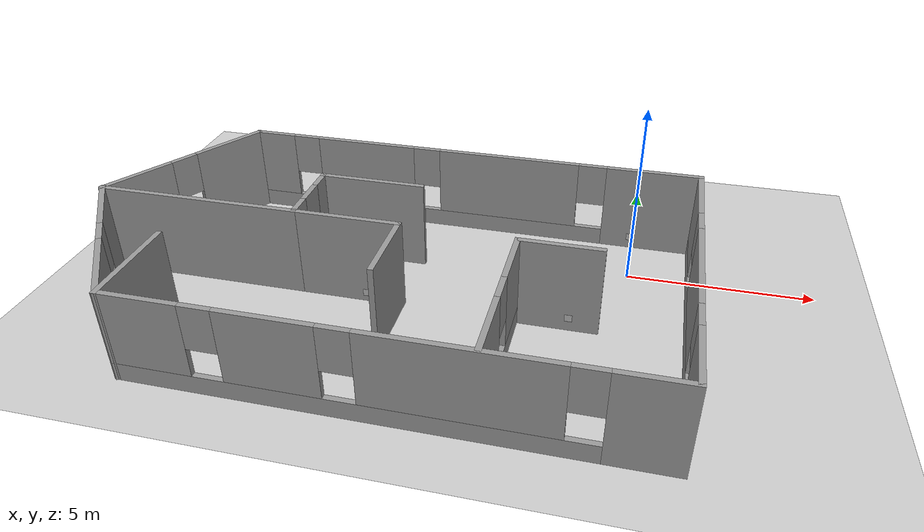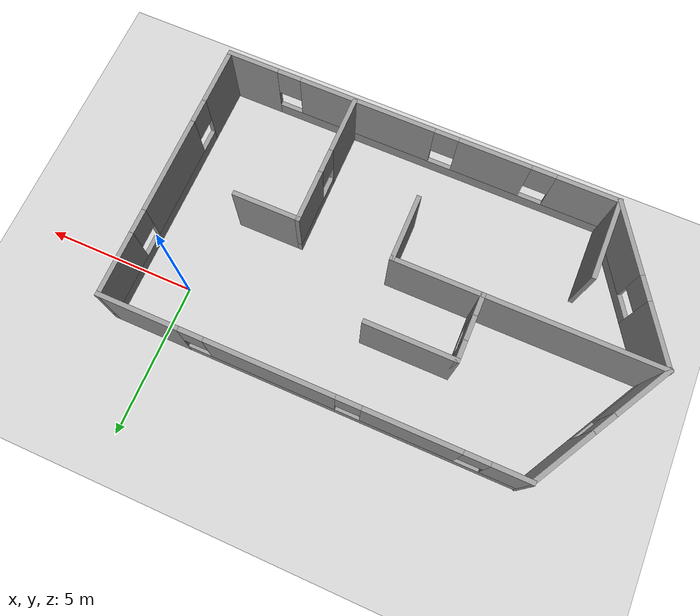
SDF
<sdf version="1.7">
 <world name="default">
  <light name="sun" type="directional">
   <pose>0 0 10 0 -0 0</pose>
   <diffuse>0.8 0.8 0.8 1</diffuse>
   <specular>0.2 0.2 0.2 1</specular>
   <attenuation>
    <range>1000</range>
    <constant>0.9</constant>
    <linear>0.01</linear>
    <quadratic>0.001</quadratic>
   </attenuation>
   <direction>-0.5 0.1 -0.9</direction>
   <spot><inner_angle>0</inner_angle><outer_angle>0</outer_angle><falloff>0</falloff></spot>
  </light>
  <model name="ground_plane">
   <static>1</static>
   <link name="link">
    <collision name="collision">
     <geometry><plane><normal>0 0 1</normal><size>100 100</size></plane></geometry>
     <surface>
      <contact><collide_bitmask>65535</collide_bitmask></contact>
      <friction><ode><mu>100</mu><mu2>50</mu2></ode></friction>
     </surface>
    </collision>
    <visual name="visual">
     <cast_shadows>0</cast_shadows>
     <geometry><plane><normal>0 0 1</normal><size>100 100</size></plane></geometry>
     <material>
      <script><uri>file://media/materials/scripts/gazebo.material</uri><name>Gazebo/Grey</name></script>
     </material>
    </visual>
   </link>
  </model>
  <gravity>0 0 -9.8</gravity>
  <magnetic_field>6e-06 2.3e-05 -4.2e-05</magnetic_field>
  <atmosphere type="adiabatic"/>
  <physics type="ode">
   <max_step_size>0.001</max_step_size>
   <real_time_factor>1</real_time_factor>
   <real_time_update_rate>1000</real_time_update_rate>
  </physics>
  <scene><ambient>0.4 0.4 0.4 1</ambient><background>0.7 0.7 0.7 1</background><shadows>1</shadows></scene>
  <spherical_coordinates>
   <surface_model>EARTH_WGS84</surface_model>
   <latitude_deg>0</latitude_deg>
   <longitude_deg>0</longitude_deg>
   <elevation>0</elevation>
   <heading_deg>0</heading_deg>
  </spherical_coordinates>
  <model name="casa1">
   <pose>-6.29806 -2.75628 0 0 -0 0</pose>
   <link name="Wall_0">
    <pose>1.41423 -4.4245 0 0 -0 3.14159</pose>
    <visual name="Wall_0_Visual_0">
     <pose>-5.73532 0 1.25 0 -0 0</pose>
     <geometry><box><size>1.77935 0.15 2.5</size></box></geometry>
     <material>
      <script><uri>file://media/materials/scripts/gazebo.material</uri><name>Gazebo/Grey</name></script>
      <ambient>1 1 1 1</ambient>
     </material>
     <meta><layer>0</layer></meta>
    </visual>
    <collision name="Wall_0_Collision_0">
     <geometry><box><size>1.77935 0.15 2.5</size></box></geometry>
     <pose>-5.73532 0 1.25 0 -0 0</pose>
    </collision>
    <visual name="Wall_0_Visual_1">
     <pose>0.889677 0 0.25 0 -0 0</pose>
     <geometry><box><size>11.4706 0.15 0.5</size></box></geometry>
     <material>
      <script><uri>file://media/materials/scripts/gazebo.material</uri><name>Gazebo/Grey</name></script>
      <ambient>1 1 1 1</ambient>
     </material>
     <meta><layer>0</layer></meta>
    </visual>
    <collision name="Wall_0_Collision_1">
     <geometry><box><size>11.4706 0.15 0.5</size></box></geometry>
     <pose>0.889677 0 0.25 0 -0 0</pose>
    </collision>
    <visual name="Wall_0_Visual_2">
     <pose>-1.75218 0 1.5 0 -0 0</pose>
     <geometry><box><size>4.58694 0.15 2</size></box></geometry>
     <material>
      <script><uri>file://media/materials/scripts/gazebo.material</uri><name>Gazebo/Grey</name></script>
      <ambient>1 1 1 1</ambient>
     </material>
     <meta><layer>0</layer></meta>
    </visual>
    <collision name="Wall_0_Collision_2">
     <geometry><box><size>4.58694 0.15 2</size></box></geometry>
     <pose>-1.75218 0 1.5 0 -0 0</pose>
    </collision>
    <visual name="Wall_0_Visual_3">
     <pose>2.53289 0 1.5 0 -0 0</pose>
     <geometry><box><size>2.38319 0.15 2</size></box></geometry>
     <material>
      <script><uri>file://media/materials/scripts/gazebo.material</uri><name>Gazebo/Grey</name></script>
      <ambient>1 1 1 1</ambient>
     </material>
     <meta><layer>0</layer></meta>
    </visual>
    <collision name="Wall_0_Collision_3">
     <geometry><box><size>2.38319 0.15 2</size></box></geometry>
     <pose>2.53289 0 1.5 0 -0 0</pose>
    </collision>
    <visual name="Wall_0_Visual_4">
     <pose>5.57474 0 1.5 0 -0 0</pose>
     <geometry><box><size>2.10052 0.15 2</size></box></geometry>
     <material>
      <script><uri>file://media/materials/scripts/gazebo.material</uri><name>Gazebo/Grey</name></script>
      <ambient>1 1 1 1</ambient>
     </material>
     <meta><layer>0</layer></meta>
    </visual>
    <collision name="Wall_0_Collision_4">
     <geometry><box><size>2.10052 0.15 2</size></box></geometry>
     <pose>5.57474 0 1.5 0 -0 0</pose>
    </collision>
    <visual name="Wall_0_Visual_5">
     <pose>-4.44565 0 1.9 0 -0 0</pose>
     <geometry><box><size>0.8 0.15 1.2</size></box></geometry>
     <material>
      <script><uri>file://media/materials/scripts/gazebo.material</uri><name>Gazebo/Grey</name></script>
      <ambient>1 1 1 1</ambient>
     </material>
     <meta><layer>0</layer></meta>
    </visual>
    <collision name="Wall_0_Collision_5">
     <geometry><box><size>0.8 0.15 1.2</size></box></geometry>
     <pose>-4.44565 0 1.9 0 -0 0</pose>
    </collision>
    <visual name="Wall_0_Visual_6">
     <pose>0.941293 0 1.9 0 -0 0</pose>
     <geometry><box><size>0.8 0.15 1.2</size></box></geometry>
     <material>
      <script><uri>file://media/materials/scripts/gazebo.material</uri><name>Gazebo/Grey</name></script>
      <ambient>1 1 1 1</ambient>
     </material>
     <meta><layer>0</layer></meta>
    </visual>
    <collision name="Wall_0_Collision_6">
     <geometry><box><size>0.8 0.15 1.2</size></box></geometry>
     <pose>0.941293 0 1.9 0 -0 0</pose>
    </collision>
    <visual name="Wall_0_Visual_7">
     <pose>4.12448 0 1.9 0 -0 0</pose>
     <geometry><box><size>0.8 0.15 1.2</size></box></geometry>
     <material>
      <script><uri>file://media/materials/scripts/gazebo.material</uri><name>Gazebo/Grey</name></script>
      <ambient>1 1 1 1</ambient>
     </material>
     <meta><layer>0</layer></meta>
    </visual>
    <collision name="Wall_0_Collision_7">
     <geometry><box><size>0.8 0.15 1.2</size></box></geometry>
     <pose>4.12448 0 1.9 0 -0 0</pose>
    </collision>
   </link>
   <link name="Wall_10">
    <collision name="Wall_10_Collision">
     <geometry><box><size>3 0.15 2.5</size></box></geometry>
     <pose>0 0 1.25 0 -0 0</pose>
    </collision>
    <visual name="Wall_10_Visual">
     <pose>0 0 1.25 0 -0 0</pose>
     <geometry><box><size>3 0.15 2.5</size></box></geometry>
     <material>
      <script><uri>file://media/materials/scripts/gazebo.material</uri><name>Gazebo/Grey</name></script>
      <ambient>1 1 1 1</ambient>
     </material>
     <meta><layer>0</layer></meta>
    </visual>
    <pose>-0.91077 0.008775 0 0 -0 0</pose>
   </link>
   <link name="Wall_11">
    <collision name="Wall_11_Collision">
     <geometry><box><size>2.25 0.15 2.5</size></box></geometry>
     <pose>0 0 1.25 0 -0 0</pose>
    </collision>
    <visual name="Wall_11_Visual">
     <pose>0 0 1.25 0 -0 0</pose>
     <geometry><box><size>2.25 0.15 2.5</size></box></geometry>
     <material>
      <script><uri>file://media/materials/scripts/gazebo.material</uri><name>Gazebo/Grey</name></script>
      <ambient>1 1 1 1</ambient>
     </material>
     <meta><layer>0</layer></meta>
    </visual>
    <pose>0.51423 -1.04123 0 0 -0 -1.5708</pose>
   </link>
   <link name="Wall_13">
    <pose>3.5866 -2.20323 0 0 -0 1.5708</pose>
    <visual name="Wall_13_Visual_0">
     <pose>-1.28197 0 1.25 0 -0 0</pose>
     <geometry><box><size>1.93606 0.15 2.5</size></box></geometry>
     <material>
      <script><uri>file://media/materials/scripts/gazebo.material</uri><name>Gazebo/Grey</name></script>
      <ambient>1 1 1 1</ambient>
     </material>
     <meta><layer>0</layer></meta>
    </visual>
    <collision name="Wall_13_Collision_0">
     <geometry><box><size>1.93606 0.15 2.5</size></box></geometry>
     <pose>-1.28197 0 1.25 0 -0 0</pose>
    </collision>
    <visual name="Wall_13_Visual_1">
     <pose>0.968033 0 0.25 0 -0 0</pose>
     <geometry><box><size>2.56393 0.15 0.5</size></box></geometry>
     <material>
      <script><uri>file://media/materials/scripts/gazebo.material</uri><name>Gazebo/Grey</name></script>
      <ambient>1 1 1 1</ambient>
     </material>
     <meta><layer>0</layer></meta>
    </visual>
    <collision name="Wall_13_Collision_1">
     <geometry><box><size>2.56393 0.15 0.5</size></box></geometry>
     <pose>0.968033 0 0.25 0 -0 0</pose>
    </collision>
    <visual name="Wall_13_Visual_2">
     <pose>1.36803 0 1.5 0 -0 0</pose>
     <geometry><box><size>1.76394 0.15 2</size></box></geometry>
     <material>
      <script><uri>file://media/materials/scripts/gazebo.material</uri><name>Gazebo/Grey</name></script>
      <ambient>1 1 1 1</ambient>
     </material>
     <meta><layer>0</layer></meta>
    </visual>
    <collision name="Wall_13_Collision_2">
     <geometry><box><size>1.76394 0.15 2</size></box></geometry>
     <pose>1.36803 0 1.5 0 -0 0</pose>
    </collision>
    <visual name="Wall_13_Visual_3">
     <pose>0.086065 0 1.9 0 -0 0</pose>
     <geometry><box><size>0.8 0.15 1.2</size></box></geometry>
     <material>
      <script><uri>file://media/materials/scripts/gazebo.material</uri><name>Gazebo/Grey</name></script>
      <ambient>1 1 1 1</ambient>
     </material>
     <meta><layer>0</layer></meta>
    </visual>
    <collision name="Wall_13_Collision_3">
     <geometry><box><size>0.8 0.15 1.2</size></box></geometry>
     <pose>0.086065 0 1.9 0 -0 0</pose>
    </collision>
   </link>
   <link name="Wall_14">
    <collision name="Wall_14_Collision">
     <geometry><box><size>2.25 0.15 2.5</size></box></geometry>
     <pose>0 0 1.25 0 -0 0</pose>
    </collision>
    <visual name="Wall_14_Visual">
     <pose>0 0 1.25 0 -0 0</pose>
     <geometry><box><size>2.25 0.15 2.5</size></box></geometry>
     <material>
      <script><uri>file://media/materials/scripts/gazebo.material</uri><name>Gazebo/Grey</name></script>
      <ambient>1 1 1 1</ambient>
     </material>
     <meta><layer>0</layer></meta>
    </visual>
    <pose>4.6366 -0.028234 0 0 -0 0</pose>
   </link>
   <link name="Wall_2">
    <pose>7.96423 0.000505 0 0 -0 1.5708</pose>
    <visual name="Wall_2_Visual_0">
     <pose>-3.50884 0 1.25 0 -0 0</pose>
     <geometry><box><size>1.98233 0.15 2.5</size></box></geometry>
     <material>
      <script><uri>file://media/materials/scripts/gazebo.material</uri><name>Gazebo/Grey</name></script>
      <ambient>1 1 1 1</ambient>
     </material>
     <meta><layer>0</layer></meta>
    </visual>
    <collision name="Wall_2_Collision_0">
     <geometry><box><size>1.98233 0.15 2.5</size></box></geometry>
     <pose>-3.50884 0 1.25 0 -0 0</pose>
    </collision>
    <visual name="Wall_2_Visual_1">
     <pose>0.991163 0 0.25 0 -0 0</pose>
     <geometry><box><size>7.01767 0.15 0.5</size></box></geometry>
     <material>
      <script><uri>file://media/materials/scripts/gazebo.material</uri><name>Gazebo/Grey</name></script>
      <ambient>1 1 1 1</ambient>
     </material>
     <meta><layer>0</layer></meta>
    </visual>
    <collision name="Wall_2_Collision_1">
     <geometry><box><size>7.01767 0.15 0.5</size></box></geometry>
     <pose>0.991163 0 0.25 0 -0 0</pose>
    </collision>
    <visual name="Wall_2_Visual_2">
     <pose>-0.08218 0 1.5 0 -0 0</pose>
     <geometry><box><size>3.27099 0.15 2</size></box></geometry>
     <material>
      <script><uri>file://media/materials/scripts/gazebo.material</uri><name>Gazebo/Grey</name></script>
      <ambient>1 1 1 1</ambient>
     </material>
     <meta><layer>0</layer></meta>
    </visual>
    <collision name="Wall_2_Collision_2">
     <geometry><box><size>3.27099 0.15 2</size></box></geometry>
     <pose>-0.08218 0 1.5 0 -0 0</pose>
    </collision>
    <visual name="Wall_2_Visual_3">
     <pose>3.42666 0 1.5 0 -0 0</pose>
     <geometry><box><size>2.14669 0.15 2</size></box></geometry>
     <material>
      <script><uri>file://media/materials/scripts/gazebo.material</uri><name>Gazebo/Grey</name></script>
      <ambient>1 1 1 1</ambient>
     </material>
     <meta><layer>0</layer></meta>
    </visual>
    <collision name="Wall_2_Collision_3">
     <geometry><box><size>2.14669 0.15 2</size></box></geometry>
     <pose>3.42666 0 1.5 0 -0 0</pose>
    </collision>
    <visual name="Wall_2_Visual_4">
     <pose>-2.11767 0 1.9 0 -0 0</pose>
     <geometry><box><size>0.8 0.15 1.2</size></box></geometry>
     <material>
      <script><uri>file://media/materials/scripts/gazebo.material</uri><name>Gazebo/Grey</name></script>
      <ambient>1 1 1 1</ambient>
     </material>
     <meta><layer>0</layer></meta>
    </visual>
    <collision name="Wall_2_Collision_4">
     <geometry><box><size>0.8 0.15 1.2</size></box></geometry>
     <pose>-2.11767 0 1.9 0 -0 0</pose>
    </collision>
    <visual name="Wall_2_Visual_5">
     <pose>1.95331 0 1.9 0 -0 0</pose>
     <geometry><box><size>0.8 0.15 1.2</size></box></geometry>
     <material>
      <script><uri>file://media/materials/scripts/gazebo.material</uri><name>Gazebo/Grey</name></script>
      <ambient>1 1 1 1</ambient>
     </material>
     <meta><layer>0</layer></meta>
    </visual>
    <collision name="Wall_2_Collision_5">
     <geometry><box><size>0.8 0.15 1.2</size></box></geometry>
     <pose>1.95331 0 1.9 0 -0 0</pose>
    </collision>
   </link>
   <link name="Wall_20">
    <collision name="Wall_20_Collision">
     <geometry><box><size>3 0.15 2.5</size></box></geometry>
     <pose>0 0 1.25 0 -0 0</pose>
    </collision>
    <visual name="Wall_20_Visual">
     <pose>0 0 1.25 0 -0 0</pose>
     <geometry><box><size>3 0.15 2.5</size></box></geometry>
     <material>
      <script><uri>file://media/materials/scripts/gazebo.material</uri><name>Gazebo/Grey</name></script>
      <ambient>1 1 1 1</ambient>
     </material>
     <meta><layer>0</layer></meta>
    </visual>
    <pose>-0.91077 2.10878 0 0 -0 0</pose>
   </link>
   <link name="Wall_22">
    <collision name="Wall_22_Collision">
     <geometry><box><size>2.75 0.15 2.5</size></box></geometry>
     <pose>0 0 1.25 0 -0 0</pose>
    </collision>
    <visual name="Wall_22_Visual">
     <pose>0 0 1.25 0 -0 0</pose>
     <geometry><box><size>2.75 0.15 2.5</size></box></geometry>
     <material>
      <script><uri>file://media/materials/scripts/gazebo.material</uri><name>Gazebo/Grey</name></script>
      <ambient>1 1 1 1</ambient>
     </material>
     <meta><layer>0</layer></meta>
    </visual>
    <pose>-5.13577 -3.1245 0 0 -0 1.5708</pose>
   </link>
   <link name="Wall_3">
    <pose>1.28923 4.42551 0 0 -0 3.14159</pose>
    <visual name="Wall_3_Visual_0">
     <pose>-5.40958 0 1.25 0 -0 0</pose>
     <geometry><box><size>2.68085 0.15 2.5</size></box></geometry>
     <material>
      <script><uri>file://media/materials/scripts/gazebo.material</uri><name>Gazebo/Grey</name></script>
      <ambient>1 1 1 1</ambient>
     </material>
     <meta><layer>0</layer></meta>
    </visual>
    <collision name="Wall_3_Collision_0">
     <geometry><box><size>2.68085 0.15 2.5</size></box></geometry>
     <pose>-5.40958 0 1.25 0 -0 0</pose>
    </collision>
    <visual name="Wall_3_Visual_1">
     <pose>1.34042 0 0.25 0 -0 0</pose>
     <geometry><box><size>10.8192 0.15 0.5</size></box></geometry>
     <material>
      <script><uri>file://media/materials/scripts/gazebo.material</uri><name>Gazebo/Grey</name></script>
      <ambient>1 1 1 1</ambient>
     </material>
     <meta><layer>0</layer></meta>
    </visual>
    <collision name="Wall_3_Collision_1">
     <geometry><box><size>10.8192 0.15 0.5</size></box></geometry>
     <pose>1.34042 0 0.25 0 -0 0</pose>
    </collision>
    <visual name="Wall_3_Visual_2">
     <pose>-1.20574 0 1.5 0 -0 0</pose>
     <geometry><box><size>4.12682 0.15 2</size></box></geometry>
     <material>
      <script><uri>file://media/materials/scripts/gazebo.material</uri><name>Gazebo/Grey</name></script>
      <ambient>1 1 1 1</ambient>
     </material>
     <meta><layer>0</layer></meta>
    </visual>
    <collision name="Wall_3_Collision_2">
     <geometry><box><size>4.12682 0.15 2</size></box></geometry>
     <pose>-1.20574 0 1.5 0 -0 0</pose>
    </collision>
    <visual name="Wall_3_Visual_3">
     <pose>3.16594 0 1.5 0 -0 0</pose>
     <geometry><box><size>3.01655 0.15 2</size></box></geometry>
     <material>
      <script><uri>file://media/materials/scripts/gazebo.material</uri><name>Gazebo/Grey</name></script>
      <ambient>1 1 1 1</ambient>
     </material>
     <meta><layer>0</layer></meta>
    </visual>
    <collision name="Wall_3_Collision_3">
     <geometry><box><size>3.01655 0.15 2</size></box></geometry>
     <pose>3.16594 0 1.5 0 -0 0</pose>
    </collision>
    <visual name="Wall_3_Visual_4">
     <pose>6.11211 0 1.5 0 -0 0</pose>
     <geometry><box><size>1.27578 0.15 2</size></box></geometry>
     <material>
      <script><uri>file://media/materials/scripts/gazebo.material</uri><name>Gazebo/Grey</name></script>
      <ambient>1 1 1 1</ambient>
     </material>
     <meta><layer>0</layer></meta>
    </visual>
    <collision name="Wall_3_Collision_4">
     <geometry><box><size>1.27578 0.15 2</size></box></geometry>
     <pose>6.11211 0 1.5 0 -0 0</pose>
    </collision>
    <visual name="Wall_3_Visual_5">
     <pose>-3.66915 0 1.9 0 -0 0</pose>
     <geometry><box><size>0.8 0.15 1.2</size></box></geometry>
     <material>
      <script><uri>file://media/materials/scripts/gazebo.material</uri><name>Gazebo/Grey</name></script>
      <ambient>1 1 1 1</ambient>
     </material>
     <meta><layer>0</layer></meta>
    </visual>
    <collision name="Wall_3_Collision_5">
     <geometry><box><size>0.8 0.15 1.2</size></box></geometry>
     <pose>-3.66915 0 1.9 0 -0 0</pose>
    </collision>
    <visual name="Wall_3_Visual_6">
     <pose>1.25767 0 1.9 0 -0 0</pose>
     <geometry><box><size>0.8 0.15 1.2</size></box></geometry>
     <material>
      <script><uri>file://media/materials/scripts/gazebo.material</uri><name>Gazebo/Grey</name></script>
      <ambient>1 1 1 1</ambient>
     </material>
     <meta><layer>0</layer></meta>
    </visual>
    <collision name="Wall_3_Collision_6">
     <geometry><box><size>0.8 0.15 1.2</size></box></geometry>
     <pose>1.25767 0 1.9 0 -0 0</pose>
    </collision>
    <visual name="Wall_3_Visual_7">
     <pose>5.07422 0 1.9 0 -0 0</pose>
     <geometry><box><size>0.8 0.15 1.2</size></box></geometry>
     <material>
      <script><uri>file://media/materials/scripts/gazebo.material</uri><name>Gazebo/Grey</name></script>
      <ambient>1 1 1 1</ambient>
     </material>
     <meta><layer>0</layer></meta>
    </visual>
    <collision name="Wall_3_Collision_7">
     <geometry><box><size>0.8 0.15 1.2</size></box></geometry>
     <pose>5.07422 0 1.9 0 -0 0</pose>
    </collision>
   </link>
   <link name="Wall_4">
    <pose>-6.66077 2.21714 0 0 -0 -2.0944</pose>
    <visual name="Wall_4_Visual_0">
     <pose>-1.47472 0 1.25 0 -0 0</pose>
     <geometry><box><size>2.30056 0.15 2.5</size></box></geometry>
     <material>
      <script><uri>file://media/materials/scripts/gazebo.material</uri><name>Gazebo/Grey</name></script>
      <ambient>1 1 1 1</ambient>
     </material>
     <meta><layer>0</layer></meta>
    </visual>
    <collision name="Wall_4_Collision_0">
     <geometry><box><size>2.30056 0.15 2.5</size></box></geometry>
     <pose>-1.47472 0 1.25 0 -0 0</pose>
    </collision>
    <visual name="Wall_4_Visual_1">
     <pose>1.15028 0 0.25 0 -0 0</pose>
     <geometry><box><size>2.94944 0.15 0.5</size></box></geometry>
     <material>
      <script><uri>file://media/materials/scripts/gazebo.material</uri><name>Gazebo/Grey</name></script>
      <ambient>1 1 1 1</ambient>
     </material>
     <meta><layer>0</layer></meta>
    </visual>
    <collision name="Wall_4_Collision_1">
     <geometry><box><size>2.94944 0.15 0.5</size></box></geometry>
     <pose>1.15028 0 0.25 0 -0 0</pose>
    </collision>
    <visual name="Wall_4_Visual_2">
     <pose>1.55028 0 1.5 0 -0 0</pose>
     <geometry><box><size>2.14944 0.15 2</size></box></geometry>
     <material>
      <script><uri>file://media/materials/scripts/gazebo.material</uri><name>Gazebo/Grey</name></script>
      <ambient>1 1 1 1</ambient>
     </material>
     <meta><layer>0</layer></meta>
    </visual>
    <collision name="Wall_4_Collision_2">
     <geometry><box><size>2.14944 0.15 2</size></box></geometry>
     <pose>1.55028 0 1.5 0 -0 0</pose>
    </collision>
    <visual name="Wall_4_Visual_3">
     <pose>0.075562 0 1.9 0 -0 0</pose>
     <geometry><box><size>0.8 0.15 1.2</size></box></geometry>
     <material>
      <script><uri>file://media/materials/scripts/gazebo.material</uri><name>Gazebo/Grey</name></script>
      <ambient>1 1 1 1</ambient>
     </material>
     <meta><layer>0</layer></meta>
    </visual>
    <collision name="Wall_4_Collision_3">
     <geometry><box><size>0.8 0.15 1.2</size></box></geometry>
     <pose>0.075562 0 1.9 0 -0 0</pose>
    </collision>
   </link>
   <link name="Wall_5">
    <pose>-6.53577 -2.20786 0 0 -0 -1.00747</pose>
    <visual name="Wall_5_Visual_0">
     <pose>-1.62944 0 1.25 0 -0 0</pose>
     <geometry><box><size>2.13458 0.15 2.5</size></box></geometry>
     <material>
      <script><uri>file://media/materials/scripts/gazebo.material</uri><name>Gazebo/Grey</name></script>
      <ambient>1 1 1 1</ambient>
     </material>
     <meta><layer>0</layer></meta>
    </visual>
    <collision name="Wall_5_Collision_0">
     <geometry><box><size>2.13458 0.15 2.5</size></box></geometry>
     <pose>-1.62944 0 1.25 0 -0 0</pose>
    </collision>
    <visual name="Wall_5_Visual_1">
     <pose>1.06729 0 0.25 0 -0 0</pose>
     <geometry><box><size>3.25888 0.15 0.5</size></box></geometry>
     <material>
      <script><uri>file://media/materials/scripts/gazebo.material</uri><name>Gazebo/Grey</name></script>
      <ambient>1 1 1 1</ambient>
     </material>
     <meta><layer>0</layer></meta>
    </visual>
    <collision name="Wall_5_Collision_1">
     <geometry><box><size>3.25888 0.15 0.5</size></box></geometry>
     <pose>1.06729 0 0.25 0 -0 0</pose>
    </collision>
    <visual name="Wall_5_Visual_2">
     <pose>1.46729 0 1.5 0 -0 0</pose>
     <geometry><box><size>2.45888 0.15 2</size></box></geometry>
     <material>
      <script><uri>file://media/materials/scripts/gazebo.material</uri><name>Gazebo/Grey</name></script>
      <ambient>1 1 1 1</ambient>
     </material>
     <meta><layer>0</layer></meta>
    </visual>
    <collision name="Wall_5_Collision_2">
     <geometry><box><size>2.45888 0.15 2</size></box></geometry>
     <pose>1.46729 0 1.5 0 -0 0</pose>
    </collision>
    <visual name="Wall_5_Visual_3">
     <pose>-0.162147 0 1.9 0 -0 0</pose>
     <geometry><box><size>0.8 0.15 1.2</size></box></geometry>
     <material>
      <script><uri>file://media/materials/scripts/gazebo.material</uri><name>Gazebo/Grey</name></script>
      <ambient>1 1 1 1</ambient>
     </material>
     <meta><layer>0</layer></meta>
    </visual>
    <collision name="Wall_5_Collision_3">
     <geometry><box><size>0.8 0.15 1.2</size></box></geometry>
     <pose>-0.162147 0 1.9 0 -0 0</pose>
    </collision>
   </link>
   <link name="Wall_7">
    <collision name="Wall_7_Collision">
     <geometry><box><size>5.75 0.15 2.5</size></box></geometry>
     <pose>0 0 1.25 0 -0 0</pose>
    </collision>
    <visual name="Wall_7_Visual">
     <pose>0 0 1.25 0 -0 0</pose>
     <geometry><box><size>5.75 0.15 2.5</size></box></geometry>
     <material>
      <script><uri>file://media/materials/scripts/gazebo.material</uri><name>Gazebo/Grey</name></script>
      <ambient>1 1 1 1</ambient>
     </material>
     <meta><layer>0</layer></meta>
    </visual>
    <pose>-5.13577 0.008775 0 0 -0 0</pose>
   </link>
   <link name="Wall_8">
    <pose>-2.33577 1.05878 0 0 -0 1.5708</pose>
    <visual name="Wall_8_Visual_0">
     <pose>-0.75446 0 1.25 0 -0 0</pose>
     <geometry><box><size>0.74108 0.15 2.5</size></box></geometry>
     <material>
      <script><uri>file://media/materials/scripts/gazebo.material</uri><name>Gazebo/Grey</name></script>
      <ambient>1 1 1 1</ambient>
     </material>
     <meta><layer>0</layer></meta>
    </visual>
    <collision name="Wall_8_Collision_0">
     <geometry><box><size>0.74108 0.15 2.5</size></box></geometry>
     <pose>-0.75446 0 1.25 0 -0 0</pose>
    </collision>
    <visual name="Wall_8_Visual_1">
     <pose>0.37054 0 0.25 0 -0 0</pose>
     <geometry><box><size>1.50892 0.15 0.5</size></box></geometry>
     <material>
      <script><uri>file://media/materials/scripts/gazebo.material</uri><name>Gazebo/Grey</name></script>
      <ambient>1 1 1 1</ambient>
     </material>
     <meta><layer>0</layer></meta>
    </visual>
    <collision name="Wall_8_Collision_1">
     <geometry><box><size>1.50892 0.15 0.5</size></box></geometry>
     <pose>0.37054 0 0.25 0 -0 0</pose>
    </collision>
    <visual name="Wall_8_Visual_2">
     <pose>0.77054 0 1.5 0 -0 0</pose>
     <geometry><box><size>0.70892 0.15 2</size></box></geometry>
     <material>
      <script><uri>file://media/materials/scripts/gazebo.material</uri><name>Gazebo/Grey</name></script>
      <ambient>1 1 1 1</ambient>
     </material>
     <meta><layer>0</layer></meta>
    </visual>
    <collision name="Wall_8_Collision_2">
     <geometry><box><size>0.70892 0.15 2</size></box></geometry>
     <pose>0.77054 0 1.5 0 -0 0</pose>
    </collision>
    <visual name="Wall_8_Visual_3">
     <pose>0.01608 0 1.9 0 -0 0</pose>
     <geometry><box><size>0.8 0.15 1.2</size></box></geometry>
     <material>
      <script><uri>file://media/materials/scripts/gazebo.material</uri><name>Gazebo/Grey</name></script>
      <ambient>1 1 1 1</ambient>
     </material>
     <meta><layer>0</layer></meta>
    </visual>
    <collision name="Wall_8_Collision_3">
     <geometry><box><size>0.8 0.15 1.2</size></box></geometry>
     <pose>0.01608 0 1.9 0 -0 0</pose>
    </collision>
   </link>
   <static>1</static>
  </model>
  <model name="qr_habitacion">
   <static>1</static>
   <link name="qr_habitacion_link">
    <pose>0 0 0.001 0 -0 1.5708</pose>
    <visual name="visual_qr_habitacion">
     <cast_shadows>0</cast_shadows>
     <geometry><box><size>0.2 0.2 0.001</size></box></geometry>
     <material>
      <script>
       <uri>model://qr_habitacion/materials/scripts</uri>
       <uri>model://qr_habitacion/materials/textures</uri>
       <name>qr_habitacion/qr_habitacion</name>
      </script>
     </material>
    </visual>
   </link>
   <pose>-6.74216 -2.824 0.259115 -1.5708 0 0</pose>
  </model>
  <model name="qr_cocina">
   <static>1</static>
   <link name="qr_cocina_link">
    <pose>0 0 0.001 0 -0 1.5708</pose>
    <visual name="visual_qr_cocina">
     <cast_shadows>0</cast_shadows>
     <geometry><box><size>0.2 0.2 0.001</size></box></geometry>
     <material>
      <script>
       <uri>model://qr_cocina/materials/scripts</uri>
       <uri>model://qr_cocina/materials/textures</uri>
       <name>qr_cocina/qr_cocina</name>
      </script>
     </material>
    </visual>
   </link>
   <pose>-1.31979 -2.86101 0.378185 -1.5708 0 0</pose>
  </model>
  <model name="qr_salon">
   <static>1</static>
   <link name="qr_salon_link">
    <pose>0 0 0.001 0 -0 1.5708</pose>
    <visual name="visual_qr_salon">
     <cast_shadows>0</cast_shadows>
     <geometry><box><size>0.2 0.2 0.001</size></box></geometry>
     <material>
      <script>
       <uri>model://qr_salon/materials/scripts</uri>
       <uri>model://qr_salon/materials/textures</uri>
       <name>qr_salon/qr_salon</name>
      </script>
     </material>
    </visual>
   </link>
   <pose>-0.079393 1.59272 0.351459 -1.5708 3e-06 -3e-06</pose>
  </model>
  <model name="qr_wc">
   <static>1</static>
   <link name="qr_wc_link">
    <pose>0 0 0.001 0 -0 1.5708</pose>
    <visual name="visual_qr_wc">
     <cast_shadows>0</cast_shadows>
     <geometry><box><size>0.2 0.2 0.001</size></box></geometry>
     <material>
      <script>
       <uri>model://qr_wc/materials/scripts</uri>
       <uri>model://qr_wc/materials/textures</uri>
       <name>qr_wc/qr_wc</name>
      </script>
     </material>
    </visual>
   </link>
   <pose>-6.74216 -0.724 0.220731 -1.5708 0 0</pose>
  </model>
 </world>
</sdf>
